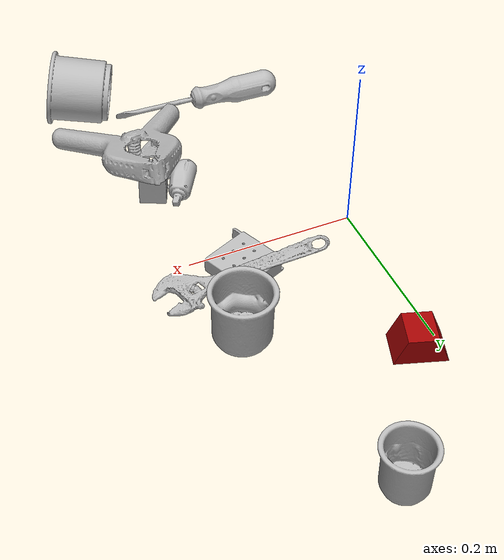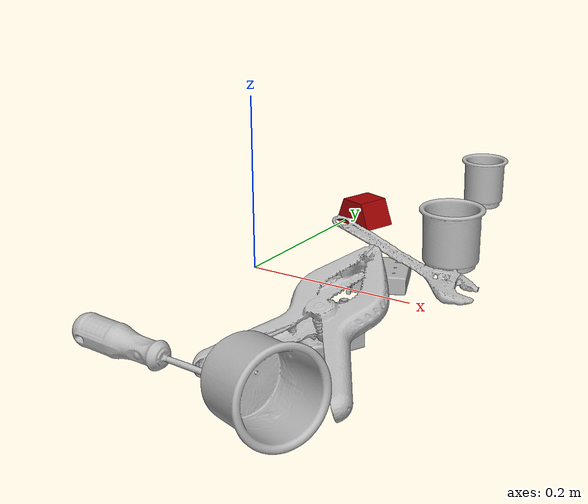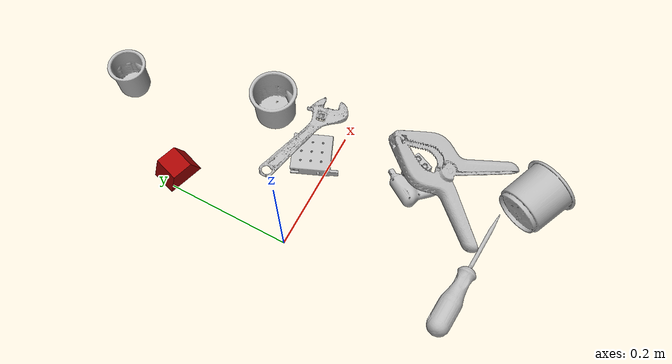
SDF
<sdf version="1.4">
  <world name="default">
    <light name="light1" type="point">
      <pose>0 0 1 0 0 0</pose>
      <diffuse>3 3 3 1</diffuse>
      <specular>3 3 3 1</specular>
    </light>
    <light name="light2" type="point">
      <pose>0 0.5 2 0 0 0</pose>
      <diffuse>1 1 1 1</diffuse>
      <specular>1 1 1 1</specular>
    </light>
    <light name="light3" type="point">
      <pose>0 0.5 2 0 0 0</pose>
      <diffuse>3 3 3 1</diffuse>
      <specular>3 3 3 1</specular>
    </light>
    <scene>
      <ambient>0.7 0.7 0.7</ambient>
    </scene>
    <model name="cup1">
      <link name="link_cup1">
        <collision name="default">
          <geometry>
            <mesh>
              <uri>model://b_cups/collision_meshes/collision.obj</uri>
              <scale>1.0 1.0 1.0</scale>
            </mesh>
          </geometry>
          <surface>
            <friction>
              <ode>
                <mu>0.5</mu>
                <mu2>0.5</mu2>
              </ode>
            </friction>
          <contact>
        <ode>
            <max_vel>0</max_vel>
            <min_depth>0.0001</min_depth>
            <kp>1e8</kp>
        </ode>
    </contact></surface>
        </collision>
        <visual name="default">
          <geometry>
            <mesh>
              <uri>model://b_cups/visual_meshes/visual.dae</uri>
              <scale>1.0 1.0 1.0</scale>
            </mesh>
          </geometry>
        </visual>
        <inertial>
          <mass>0.03190340846776962</mass>
          <pose>0.0005182004533708096 0.0018058607820421457 -0.0013381806202232838 0.11356328214070865 0.03872483993123738 -0.34569243052877063</pose>
          <inertia>
            <ixx>2.0883017e-05</ixx>
            <iyy>2.0486541e-05</iyy>
            <izz>1.7572664e-05</izz>
            <ixy>0</ixy>
            <ixz>0</ixz>
            <iyz>0</iyz>
          </inertia>
        </inertial>
      </link>
      <pose>0.12368819862604141 0.35629552602767944 0.031996339559555054 -0.007660266134954058 -0.00377147960039846 -1.633337267676495</pose>
    </model>
    <model name="cup2">
      <link name="link_cup2">
        <collision name="default">
          <geometry>
            <mesh>
              <uri>model://e_cups/collision_meshes/collision.obj</uri>
              <scale>1.0 1.0 1.0</scale>
            </mesh>
          </geometry>
          <surface>
            <friction>
              <ode>
                <mu>0.5</mu>
                <mu2>0.5</mu2>
              </ode>
            </friction>
          <contact>
        <ode>
            <max_vel>0</max_vel>
            <min_depth>0.0001</min_depth>
            <kp>1e8</kp>
        </ode>
    </contact></surface>
        </collision>
        <visual name="default">
          <geometry>
            <mesh>
              <uri>model://e_cups/visual_meshes/visual.dae</uri>
              <scale>1.0 1.0 1.0</scale>
            </mesh>
          </geometry>
        </visual>
        <inertial>
          <mass>0.09350046515464783</mass>
          <pose>0.0011355748865753412 0.0028797851409763098 -0.0038829720579087734 0.69524087765449 0.08767898447354379 -0.5235249697507389</pose>
          <inertia>
            <ixx>8.2444014e-05</ixx>
            <iyy>8.6165805e-05</iyy>
            <izz>7.882601e-05</izz>
            <ixy>0</ixy>
            <ixz>0</ixz>
            <iyz>0</iyz>
          </inertia>
        </inertial>
      </link>
      <pose>0.18857648968696594 0.12249874323606491 0.035600267350673676 -1.6797073403760973e-05 1.0780323679667755e-05 -2.750269928448497</pose>
    </model>
    <model name="cup3">
      <link name="link_cup3">
        <collision name="default">
          <geometry>
            <mesh>
              <uri>model://h_cups/collision_meshes/collision.obj</uri>
              <scale>1.0 1.0 1.0</scale>
            </mesh>
          </geometry>
          <surface>
            <friction>
              <ode>
                <mu>0.5</mu>
                <mu2>0.5</mu2>
              </ode>
            </friction>
          <contact>
        <ode>
            <max_vel>0</max_vel>
            <min_depth>0.0001</min_depth>
            <kp>1e8</kp>
        </ode>
    </contact></surface>
        </collision>
        <visual name="default">
          <geometry>
            <mesh>
              <uri>model://h_cups/visual_meshes/visual.dae</uri>
              <scale>1.0 1.0 1.0</scale>
            </mesh>
          </geometry>
        </visual>
        <inertial>
          <mass>0.05626832693815231</mass>
          <pose>-2.7024709197576158e-05 0.00023018589126877487 -0.0018405396258458495 -0.02436208446622447 0.06545190020339471 0.12885609358770897</pose>
          <inertia>
            <ixx>7.2667885e-05</ixx>
            <iyy>7.180077e-05</iyy>
            <izz>7.620872e-05</izz>
            <ixy>0</ixy>
            <ixz>0</ixz>
            <iyz>0</iyz>
          </inertia>
        </inertial>
      </link>
      <pose>0.22450143098831177 -0.30514657497406006 0.04224755987524986 -1.4502278930180028 0.49217461733109596 -1.926555032377978</pose>
    </model>
    <model name="toy1">
      <link name="link_toy1">
        <collision name="default">
          <geometry>
            <mesh>
              <uri>model://nine_hole_peg_test/collision_meshes/collision.obj</uri>
              <scale>0.5 0.5 0.5</scale>
            </mesh>
          </geometry>
          <surface>
            <friction>
              <ode>
                <mu>0.5</mu>
                <mu2>0.5</mu2>
              </ode>
            </friction>
          <contact>
        <ode>
            <max_vel>0</max_vel>
            <min_depth>0.0001</min_depth>
            <kp>1e8</kp>
        </ode>
    </contact></surface>
        </collision>
        <visual name="default">
          <geometry>
            <mesh>
              <uri>model://nine_hole_peg_test/visual_meshes/visual.dae</uri>
              <scale>0.5 0.5 0.5</scale>
            </mesh>
          </geometry>
        </visual>
        <inertial>
          <mass>0.06318242102861404</mass>
          <pose>-0.0023086941801011562 -0.004823808092623949 1.3230346667114645e-05 -0.0014666789322941463 0.0007194184826049595 -0.6342412444031488</pose>
          <inertia>
            <ixx>2.4699024e-05</ixx>
            <iyy>2.3061213e-05</iyy>
            <izz>4.327997e-05</izz>
            <ixy>0</ixy>
            <ixz>0</ixz>
            <iyz>0</iyz>
          </inertia>
        </inertial>
      </link>
      <pose>0.1460944563150406 0.026328567415475845 0.010385466739535332 -1.7631208311570987e-06 -3.4736291523825925e-06 -2.7432359080550848</pose>
    </model>
    <model name="toy2">
      <link name="link_toy2">
        <collision name="default">
          <geometry>
            <mesh>
              <uri>model://prism/collision_meshes/collision.obj</uri>
              <scale>0.5 0.5 0.5</scale>
            </mesh>
          </geometry>
          <surface>
            <friction>
              <ode>
                <mu>0.5</mu>
                <mu2>0.5</mu2>
              </ode>
            </friction>
          <contact>
        <ode>
            <max_vel>0</max_vel>
            <min_depth>0.0001</min_depth>
            <kp>1e8</kp>
        </ode>
    </contact></surface>
        </collision>
        <visual name="default">
          <geometry>
            <mesh>
              <uri>model://prism/visual_meshes/visual.dae</uri>
              <scale>0.5 0.5 0.5</scale>
            </mesh>
          </geometry>
        </visual>
        <inertial>
          <mass>0.058882199227809906</mass>
          <pose>-4.92679828312248e-05 -2.480786349678965e-07 -0.0016934550367295742 0.0 0.00655918030046738 0.0</pose>
          <inertia>
            <ixx>1.32851155e-05</ixx>
            <iyy>1.6055232e-05</iyy>
            <izz>1.9665738e-05</izz>
            <ixy>0</ixy>
            <ixz>0</ixz>
            <iyz>0</iyz>
          </inertia>
        </inertial>
      </link>
      <pose>0.024707863107323647 0.20769363641738892 0.016085000708699226 -1.1470913233169181e-08 -2.4434734638621114e-08 -0.31253662292680273</pose>
    </model>
    <model name="toy3">
      <link name="link_toy3">
        <collision name="default">
          <geometry>
            <mesh>
              <uri>model://b_toy_airplane/collision_meshes/collision.obj</uri>
              <scale>0.5 0.5 0.5</scale>
            </mesh>
          </geometry>
          <surface>
            <friction>
              <ode>
                <mu>0.5</mu>
                <mu2>0.5</mu2>
              </ode>
            </friction>
          <contact>
        <ode>
            <max_vel>0</max_vel>
            <min_depth>0.0001</min_depth>
            <kp>1e8</kp>
        </ode>
    </contact></surface>
        </collision>
        <visual name="default">
          <geometry>
            <mesh>
              <uri>model://b_toy_airplane/visual_meshes/visual.dae</uri>
              <scale>0.5 0.5 0.5</scale>
            </mesh>
          </geometry>
        </visual>
        <inertial>
          <mass>0.06070837751030922</mass>
          <pose>0.002540682442486286 0.0020077924709767103 0.0047715334221720695 -0.040018114249042835 -0.04022179473329346 -0.5601502235260123</pose>
          <inertia>
            <ixx>2.8176557e-05</ixx>
            <iyy>1.1262445e-05</iyy>
            <izz>3.5054447e-05</izz>
            <ixy>0</ixy>
            <ixz>0</ixz>
            <iyz>0</iyz>
          </inertia>
        </inertial>
      </link>
      <pose>0.16440366208553314 -0.13766641914844513 0.008488936349749565 0.1848764682555384 0.1134992497697807 0.9853235374219819</pose>
    </model>
    <model name="toy4">
      <link name="link_toy4">
        <collision name="default">
          <geometry>
            <mesh>
              <uri>model://f_lego_duplo/collision_meshes/collision.obj</uri>
              <scale>1.0 1.0 1.0</scale>
            </mesh>
          </geometry>
          <surface>
            <friction>
              <ode>
                <mu>0.5</mu>
                <mu2>0.5</mu2>
              </ode>
            </friction>
          <contact>
        <ode>
            <max_vel>0</max_vel>
            <min_depth>0.0001</min_depth>
            <kp>1e8</kp>
        </ode>
    </contact></surface>
        </collision>
        <visual name="default">
          <geometry>
            <mesh>
              <uri>model://f_lego_duplo/visual_meshes/visual.dae</uri>
              <scale>1.0 1.0 1.0</scale>
            </mesh>
          </geometry>
        </visual>
        <inertial>
          <mass>0.029542475938796997</mass>
          <pose>2.369392677792348e-05 0.00013393184053711593 0.0018837879179045558 0.029838766168002753 -0.014424835911361083 -0.6756712748416152</pose>
          <inertia>
            <ixx>6.2424897e-06</ixx>
            <iyy>6.2981026e-06</iyy>
            <izz>5.4187462e-06</izz>
            <ixy>0</ixy>
            <ixz>0</ixz>
            <iyz>0</iyz>
          </inertia>
        </inertial>
      </link>
      <pose>0.19405096769332886 -0.12734445929527283 0.021871056407690048 0.00023978160119780278 6.361278601155646e-05 -0.4203256414688235</pose>
    </model>
    <model name="hardware1">
      <link name="link_hardware1">
        <collision name="default">
          <geometry>
            <mesh>
              <uri>model://extra_large_clamp/collision_meshes/collision.obj</uri>
              <scale>1.0 1.0 1.0</scale>
            </mesh>
          </geometry>
          <surface>
            <friction>
              <ode>
                <mu>0.5</mu>
                <mu2>0.5</mu2>
              </ode>
            </friction>
          <contact>
        <ode>
            <max_vel>0</max_vel>
            <min_depth>0.0001</min_depth>
            <kp>1e8</kp>
        </ode>
    </contact></surface>
        </collision>
        <visual name="default">
          <geometry>
            <mesh>
              <uri>model://extra_large_clamp/visual_meshes/visual.dae</uri>
              <scale>1.0 1.0 1.0</scale>
            </mesh>
          </geometry>
        </visual>
        <inertial>
          <mass>0.20469266176223755</mass>
          <pose>0.00323202065192163 -7.615445792907849e-05 0.0003172155993524939 0.013786991356050505 -0.0005066836095273004 -0.000893628832478523</pose>
          <inertia>
            <ixx>0.00031109934</ixx>
            <iyy>0.0005356169</iyy>
            <izz>0.00081831246</izz>
            <ixy>0</ixy>
            <ixz>0</ixz>
            <iyz>0</iyz>
          </inertia>
        </inertial>
      </link>
      <pose>0.19908829033374786 -0.16992071270942688 0.043505702167749405 -0.005506414148929835 -0.34818118181790864 1.5245534382294932</pose>
    </model>
    <model name="hardware2">
      <link name="link_hardware2">
        <collision name="default">
          <geometry>
            <mesh>
              <uri>model://flat_screwdriver/collision_meshes/collision.obj</uri>
              <scale>1.0 1.0 1.0</scale>
            </mesh>
          </geometry>
          <surface>
            <friction>
              <ode>
                <mu>0.5</mu>
                <mu2>0.5</mu2>
              </ode>
            </friction>
          <contact>
        <ode>
            <max_vel>0</max_vel>
            <min_depth>0.0001</min_depth>
            <kp>1e8</kp>
        </ode>
    </contact></surface>
        </collision>
        <visual name="default">
          <geometry>
            <mesh>
              <uri>model://flat_screwdriver/visual_meshes/visual.dae</uri>
              <scale>1.0 1.0 1.0</scale>
            </mesh>
          </geometry>
        </visual>
        <inertial>
          <mass>0.09510745853185654</mass>
          <pose>-0.048918697983026505 -0.0006576799787580967 -0.000614091579336673 -0.5614762322958965 -0.003233723970645699 0.006982278511552064</pose>
          <inertia>
            <ixx>1.1236876e-05</ixx>
            <iyy>0.00014265477</iyy>
            <izz>0.00014258873</izz>
            <ixy>0</ixy>
            <ixz>0</ixz>
            <iyz>0</iyz>
          </inertia>
        </inertial>
      </link>
      <pose>0.08078975230455399 -0.2633443772792816 0.015663031488656998 -1.6091874959745067 0.016818445579117516 -0.0672780306889522</pose>
    </model>
    <model name="hardware3">
      <link name="link_hardware3">
        <collision name="default">
          <geometry>
            <mesh>
              <uri>model://adjustable_wrench/collision_meshes/collision.obj</uri>
              <scale>1.0 1.0 1.0</scale>
            </mesh>
          </geometry>
          <surface>
            <friction>
              <ode>
                <mu>0.5</mu>
                <mu2>0.5</mu2>
              </ode>
            </friction>
          <contact>
        <ode>
            <max_vel>0</max_vel>
            <min_depth>0.0001</min_depth>
            <kp>1e8</kp>
        </ode>
    </contact></surface>
        </collision>
        <visual name="default">
          <geometry>
            <mesh>
              <uri>model://adjustable_wrench/visual_meshes/visual.dae</uri>
              <scale>1.0 1.0 1.0</scale>
            </mesh>
          </geometry>
        </visual>
        <inertial>
          <mass>0.02741360291838646</mass>
          <pose>0.03740980476140976 -0.002896887017413974 -0.0011149230413138866 -0.0144733350781748 0.006656025939833136 -0.010954202845362587</pose>
          <inertia>
            <ixx>5.610589e-06</ixx>
            <iyy>6.5665416e-05</iyy>
            <izz>7.0977985e-05</izz>
            <ixy>0</ixy>
            <ixz>0</ixz>
            <iyz>0</iyz>
          </inertia>
        </inertial>
      </link>
      <pose>0.16511106491088867 0.05790809914469719 0.02652166783809662 -0.0004985664525088929 0.24614816750469395 -0.17539874037455658</pose>
    </model>
  <physics type="ode">
      <max_contacts>50</max_contacts>
      <ode>
        <solver>
          <type>quick</type>
          <iters>75</iters>
        </solver>
        <constraints>
          <contact_max_correcting_vel>0</contact_max_correcting_vel>
          <contact_surface_layer>0</contact_surface_layer>
        </constraints>
      </ode>
    </physics></world>
</sdf>
